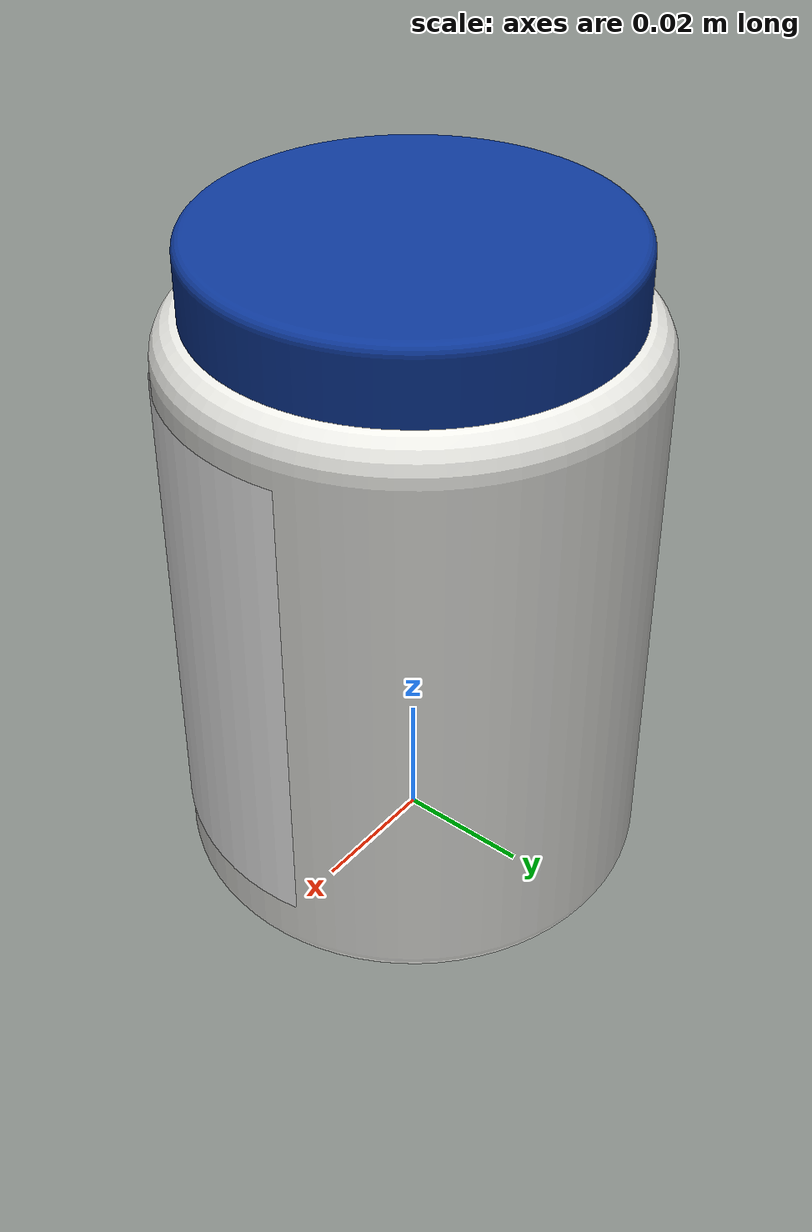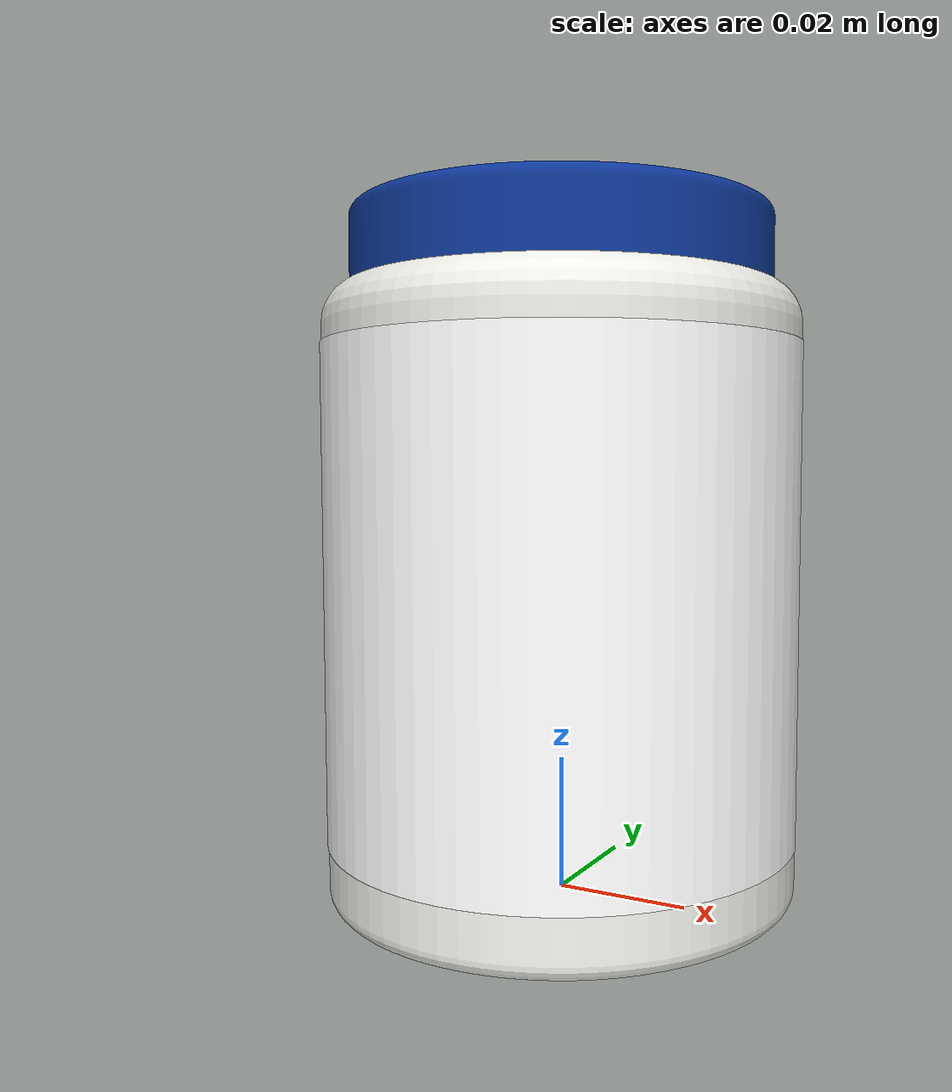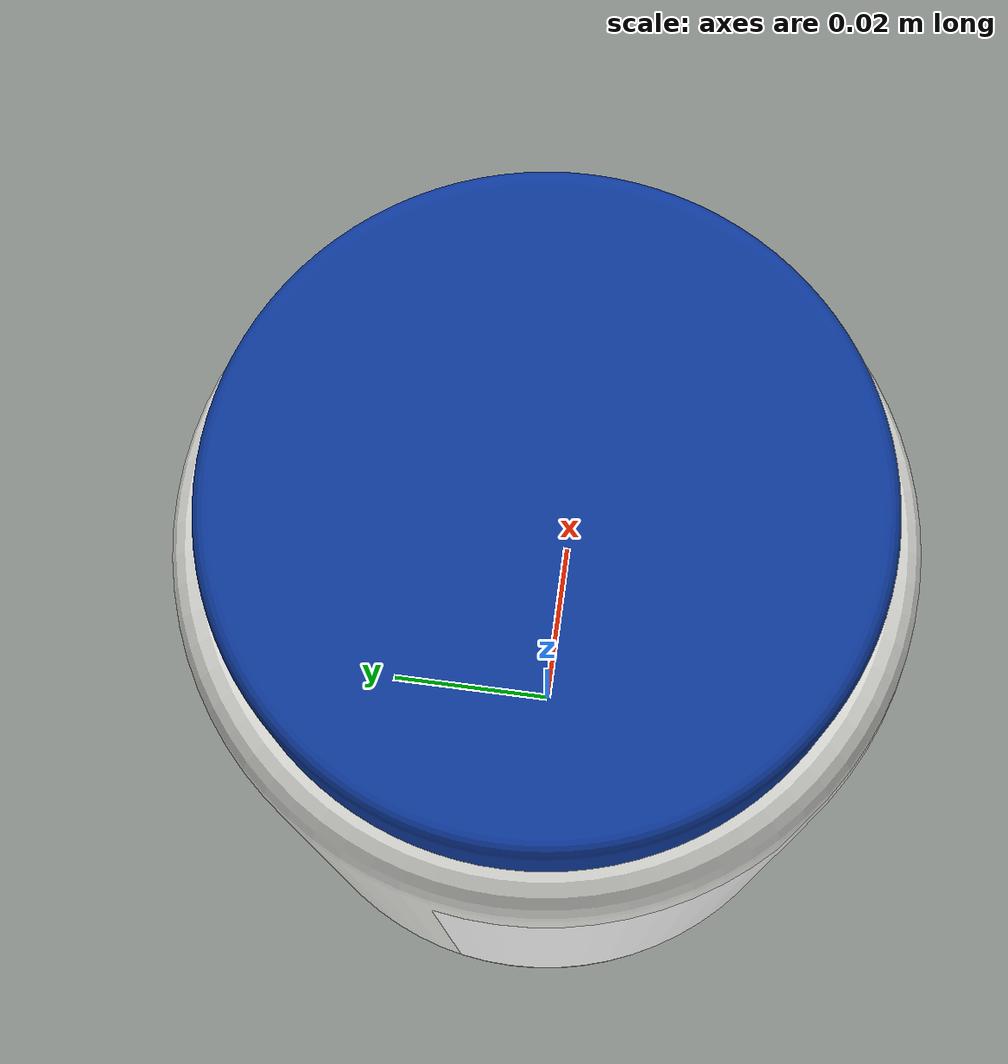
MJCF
<mujoco model="jar_250ml">
  <asset>
    <mesh name="jar_250ml_00" file="jar_250ml_00.obj" inertia="exact"/>
    <mesh name="jar_250ml_01" file="jar_250ml_01.obj" inertia="exact"/>
    <mesh name="jar_250ml_02" file="jar_250ml_02.obj" inertia="exact"/>
    <mesh name="jar_250ml_03" file="jar_250ml_03.obj" inertia="exact"/>
  </asset>
  <worldbody>
    <body name="jar_250ml">
      <geom type="mesh" mesh="jar_250ml_00" rgba="0.050 0.220 0.600 1.000" density="950"/>  <!-- Cap_PP_Blue -->
      <geom type="mesh" mesh="jar_250ml_01" rgba="1.000 1.000 1.000 1.000" density="950"/>  <!-- Label_MuskKetone -->
      <geom type="mesh" mesh="jar_250ml_02" rgba="0.930 0.900 0.620 1.000" density="950"/>  <!-- Powder_MuskKetone -->
      <geom type="mesh" mesh="jar_250ml_03" rgba="0.930 0.930 0.910 1.000" density="950"/>  <!-- HDPE_White -->
    </body>
  </worldbody>
</mujoco>
